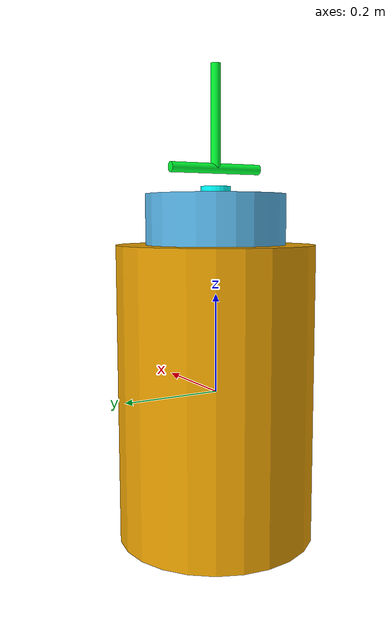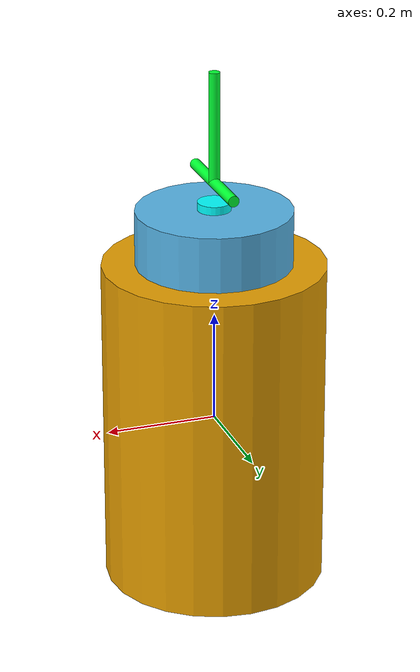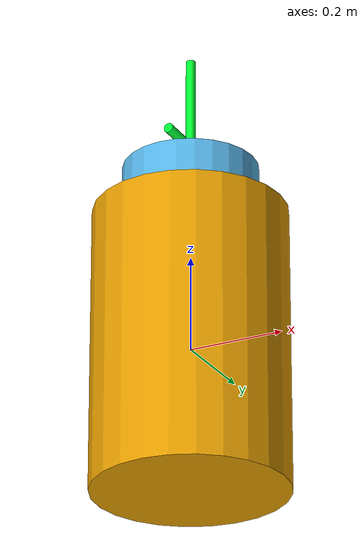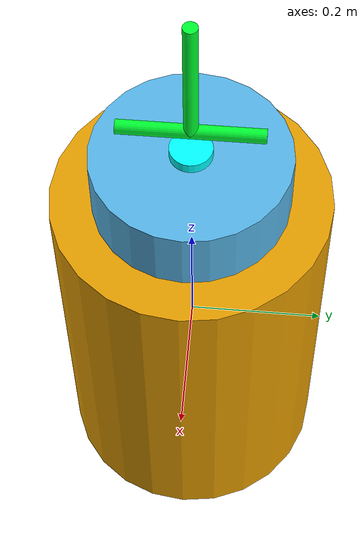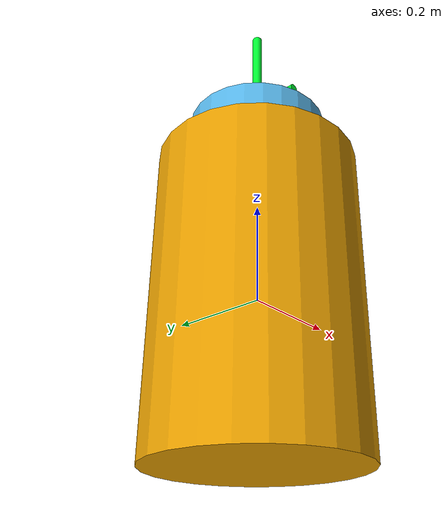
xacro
<?xml version="1.0"?>
<robot xmlns:xacro="http://www.ros.org/wiki/xacro" name="telescope">

    <xacro:include filename="urdf/tel.urdf" />

    <xacro:arg name="initial_positions_file" default="initial_positions.yaml" />
    <xacro:arg name="ros2_control_hardware_type" default="mock_components" />
    <xacro:include filename="telescope.ros2_control.xacro" />

    <xacro:telescope_ros2_control name="TelController" initial_positions_file="$(arg initial_positions_file)" ros2_control_hardware_type="$(arg ros2_control_hardware_type)"/>

</robot>

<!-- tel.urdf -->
<robot name="telescope">

  <link name="base_link">
    <visual>
      <geometry>
        <cylinder length="0.6" radius="0.2"/>
      </geometry>
    </visual>
    <collision>
      <geometry>
        <cylinder length="0.6" radius="0.2"/>
      </geometry>
    </collision>

  </link>

  <link name="base_link2">
    <visual>
      <geometry>
        <cylinder length="0.1" radius="0.14"/>
      </geometry>
    </visual>
    <collision>
      <geometry>
        <cylinder length="0.1" radius="0.14"/>
      </geometry>
    </collision>
  </link>

  <joint name="dummy_base_link_joint" type="fixed">
        <parent link="base_link" />
        <child link="base_link2" />
        <origin rpy="0 0 0" xyz="0 0 0.35" />
        <axis xyz="0 0 0" />
  </joint>

  <link name="azimuth_link">
    <visual>
      <geometry>
        <cylinder length="0.03" radius="0.03"/>
      </geometry>
      <material name="Cyan">
        <color rgba="0 1.0 1.0 1.0"/>
      </material>
    </visual>

    <collision>
      <geometry>
        <cylinder length="0.03" radius="0.03"/>
      </geometry>
    </collision>

  </link>

  <joint name="az_joint" type="revolute">
    <safety_controller k_position="100.0" k_velocity="40.0" soft_lower_limit="-1.57" soft_upper_limit="1.57" />
    <limit effort="87" lower="-1.571" upper="1.571" velocity="2.3925" />
        <parent link="base_link2" />
        <child link="azimuth_link" />
        <origin rpy="0 0 0" xyz="0 0 0.05" />
        <axis xyz="0 0 1" />
  </joint>

  <link name="el_link">
    <visual>
      <geometry>
        <cylinder length="0.2" radius="0.01"/>
      </geometry>
      <material name="Green">
        <color rgba="0.0 1.0 0.2 1.0"/>
      </material>
    </visual>
    <collision>
      <geometry>
        <cylinder length="0.2" radius="0.01"/>
      </geometry>
    </collision>
  </link>

  <joint name="el_joint" type="revolute">
    <safety_controller k_position="100.0" k_velocity="40.0" soft_lower_limit="-1.57" soft_upper_limit="1.57" />
    <limit effort="87" lower="-1.571" upper="1.571" velocity="2.3925" />
        <parent link="azimuth_link" />
        <child link="el_link" />
        <origin rpy="1.57 0 0" xyz="0 0 0.05" />
        <axis xyz="0 0 1" />
  </joint>

  <link name="eef_link" />

  <joint name="eef_joint" type="revolute">
    <safety_controller k_position="100.0" k_velocity="40.0" soft_lower_limit="-1.57" soft_upper_limit="1.57" />
    <limit effort="87" lower="-1.571" upper="1.571" velocity="2.3925" />
        <parent link="el_link" />
        <child link="eef_link" />
        <origin rpy="0 0 0" xyz="0 0 0.0" />
        <axis xyz="1 0 0" />
  </joint>

  <link name="el_dummy">
    <visual>
      <geometry>
        <cylinder length="0.2" radius="0.01"/>
      </geometry>
      <material name="Green">
        <color rgba="0.0 1.0 0.2 1.0"/>
      </material>
    </visual>
    <collision>
      <geometry>
        <cylinder length="0.2" radius="0.01"/>
      </geometry>
    </collision>
  </link>

  <joint name="el_dummy_joint" type="fixed">
        <parent link="el_link" />
        <child link="el_dummy" />
        <origin rpy="1.57 0 0" xyz="0.0 0.1 0.0" />
        <axis xyz="0 0 0" />
  </joint>

</robot>
